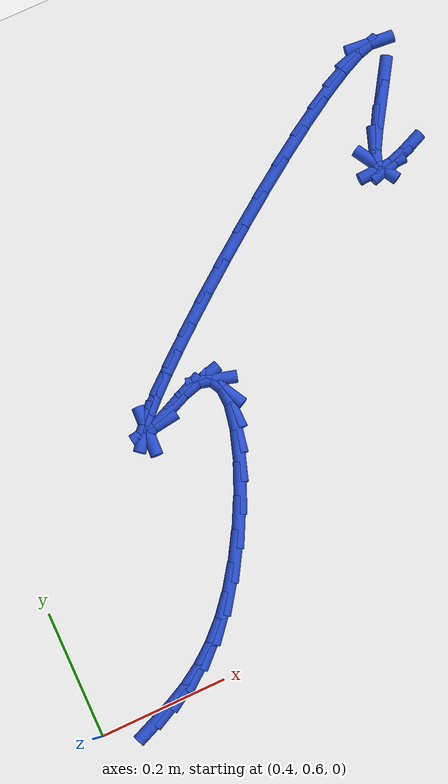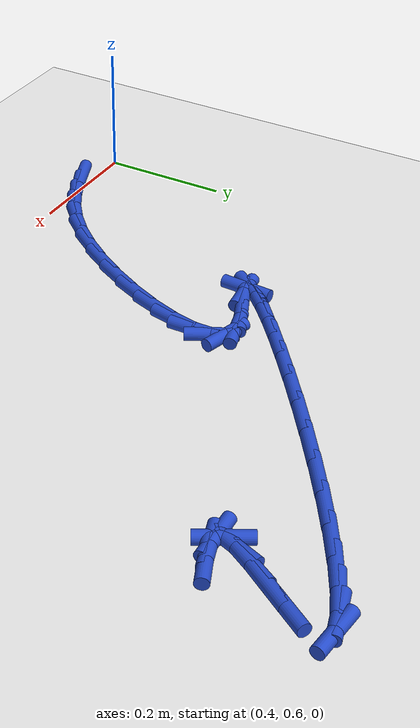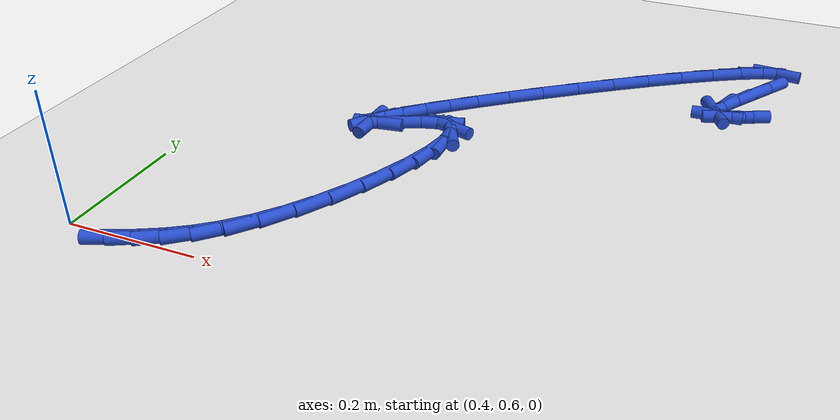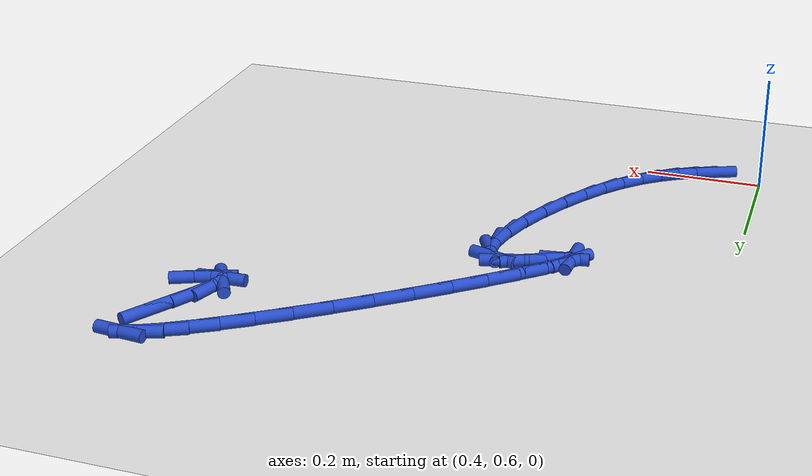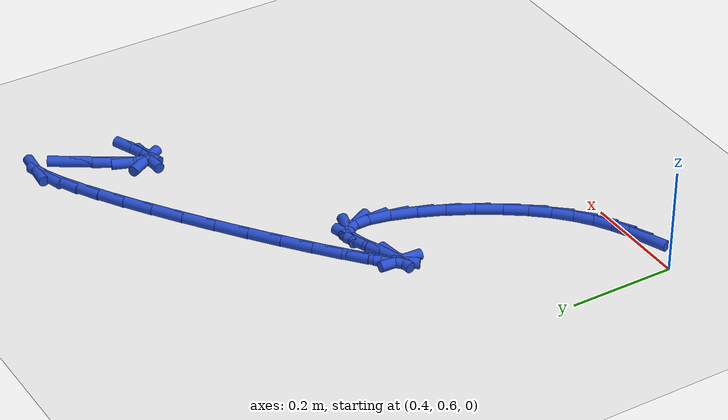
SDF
<sdf version="1.6">
 <world name="default">
  <model name="ground_plane">
   <static>1</static>
   <link name="link">
    <collision name="collision">
     <geometry><plane><normal>0 0 1</normal><size>100 100</size></plane></geometry>
     <surface><friction><ode><mu>100</mu><mu2>50</mu2></ode></friction></surface>
    </collision>
    <visual name="visual">
     <cast_shadows>0</cast_shadows>
     <geometry><plane><normal>0 0 1</normal><size>100 100</size></plane></geometry>
     <material>
      <script><uri>file://media/materials/scripts/gazebo.material</uri><name>Gazebo/WhiteGlow</name></script>
     </material>
    </visual>
   </link>
  </model>
  <model name="line">
   <link name="link_24">
    <pose>0.4833484668485068 0.586368787556622 0.01 0 1.57 0.38820993739455334</pose>
    <collision name="collision">
     <geometry><cylinder><radius>0.01</radius><length>0.08</length></cylinder></geometry>
    </collision>
    <visual name="visual">
     <material>
      <script><name>Gazebo/Blue</name><uri>file://media/materials/scripts/gazebo.material</uri></script>
     </material>
     <geometry><cylinder><radius>0.01</radius><length>0.08</length></cylinder></geometry>
    </visual>
   </link>
   <link name="link_25">
    <pose>0.5137501321736483 0.5988019720535729 0.01 0 1.57 0.46328042237995387</pose>
    <collision name="collision">
     <geometry><cylinder><radius>0.01</radius><length>0.08</length></cylinder></geometry>
    </collision>
    <visual name="visual">
     <material>
      <script><name>Gazebo/Blue</name><uri>file://media/materials/scripts/gazebo.material</uri></script>
     </material>
     <geometry><cylinder><radius>0.01</radius><length>0.08</length></cylinder></geometry>
    </visual>
   </link>
   <link name="link_26">
    <pose>0.5439509091998385 0.6138885014589054 0.01 0 1.57 0.5567034667190686</pose>
    <collision name="collision">
     <geometry><cylinder><radius>0.01</radius><length>0.08</length></cylinder></geometry>
    </collision>
    <visual name="visual">
     <material>
      <script><name>Gazebo/Blue</name><uri>file://media/materials/scripts/gazebo.material</uri></script>
     </material>
     <geometry><cylinder><radius>0.01</radius><length>0.08</length></cylinder></geometry>
    </visual>
   </link>
   <link name="link_27">
    <pose>0.573946174326545 0.6325565557082264 0.01 0 1.57 0.6612846778918714</pose>
    <collision name="collision">
     <geometry><cylinder><radius>0.01</radius><length>0.08</length></cylinder></geometry>
    </collision>
    <visual name="visual">
     <material>
      <script><name>Gazebo/Blue</name><uri>file://media/materials/scripts/gazebo.material</uri></script>
     </material>
     <geometry><cylinder><radius>0.01</radius><length>0.08</length></cylinder></geometry>
    </visual>
   </link>
   <link name="link_28">
    <pose>0.6037313039532363 0.6557343147371439 0.01 0 1.57 0.768991452472936</pose>
    <collision name="collision">
     <geometry><cylinder><radius>0.01</radius><length>0.08</length></cylinder></geometry>
    </collision>
    <visual name="visual">
     <material>
      <script><name>Gazebo/Blue</name><uri>file://media/materials/scripts/gazebo.material</uri></script>
     </material>
     <geometry><cylinder><radius>0.01</radius><length>0.08</length></cylinder></geometry>
    </visual>
   </link>
   <link name="link_29">
    <pose>0.6333016744793794 0.6843499584812642 0.01 0 1.57 0.8724670537489958</pose>
    <collision name="collision">
     <geometry><cylinder><radius>0.01</radius><length>0.08</length></cylinder></geometry>
    </collision>
    <visual name="visual">
     <material>
      <script><name>Gazebo/Blue</name><uri>file://media/materials/scripts/gazebo.material</uri></script>
     </material>
     <geometry><cylinder><radius>0.01</radius><length>0.08</length></cylinder></geometry>
    </visual>
   </link>
   <link name="link_30">
    <pose>0.6626418207621968 0.7193021566672196 0.01 0 1.57 0.9601165431308157</pose>
    <collision name="collision">
     <geometry><cylinder><radius>0.01</radius><length>0.08</length></cylinder></geometry>
    </collision>
    <visual name="visual">
     <material>
      <script><name>Gazebo/Blue</name><uri>file://media/materials/scripts/gazebo.material</uri></script>
     </material>
     <geometry><cylinder><radius>0.01</radius><length>0.08</length></cylinder></geometry>
    </visual>
   </link>
   <link name="link_31">
    <pose>0.6912569975205123 0.7601849992191632 0.01 0 1.57 1.0309089559622644</pose>
    <collision name="collision">
     <geometry><cylinder><radius>0.01</radius><length>0.08</length></cylinder></geometry>
    </collision>
    <visual name="visual">
     <material>
      <script><name>Gazebo/Blue</name><uri>file://media/materials/scripts/gazebo.material</uri></script>
     </material>
     <geometry><cylinder><radius>0.01</radius><length>0.08</length></cylinder></geometry>
    </visual>
   </link>
   <link name="link_32">
    <pose>0.7179941788518448 0.8048007646880739 0.01 0 1.57 1.0959491649789292</pose>
    <collision name="collision">
     <geometry><cylinder><radius>0.01</radius><length>0.08</length></cylinder></geometry>
    </collision>
    <visual name="visual">
     <material>
      <script><name>Gazebo/Blue</name><uri>file://media/materials/scripts/gazebo.material</uri></script>
     </material>
     <geometry><cylinder><radius>0.01</radius><length>0.08</length></cylinder></geometry>
    </visual>
   </link>
   <link name="link_33">
    <pose>0.7416525631832369 0.8508216883167274 0.01 0 1.57 1.164950753278454</pose>
    <collision name="collision">
     <geometry><cylinder><radius>0.01</radius><length>0.08</length></cylinder></geometry>
    </collision>
    <visual name="visual">
     <material>
      <script><name>Gazebo/Blue</name><uri>file://media/materials/scripts/gazebo.material</uri></script>
     </material>
     <geometry><cylinder><radius>0.01</radius><length>0.08</length></cylinder></geometry>
    </visual>
   </link>
   <link name="link_34">
    <pose>0.7610313489417315 0.8959200053478993 0.01 0 1.57 1.2501414862681839</pose>
    <collision name="collision">
     <geometry><cylinder><radius>0.01</radius><length>0.08</length></cylinder></geometry>
    </collision>
    <visual name="visual">
     <material>
      <script><name>Gazebo/Blue</name><uri>file://media/materials/scripts/gazebo.material</uri></script>
     </material>
     <geometry><cylinder><radius>0.01</radius><length>0.08</length></cylinder></geometry>
    </visual>
   </link>
   <link name="link_35">
    <pose>0.7749297345543708 0.9377679510243652 0.01 0 1.57 1.3743759682598755</pose>
    <collision name="collision">
     <geometry><cylinder><radius>0.01</radius><length>0.08</length></cylinder></geometry>
    </collision>
    <visual name="visual">
     <material>
      <script><name>Gazebo/Blue</name><uri>file://media/materials/scripts/gazebo.material</uri></script>
     </material>
     <geometry><cylinder><radius>0.01</radius><length>0.08</length></cylinder></geometry>
    </visual>
   </link>
   <link name="link_36">
    <pose>0.7821469184481973 0.9740377605889001 0.01 0 1.57 -1.5473616973023543</pose>
    <collision name="collision">
     <geometry><cylinder><radius>0.01</radius><length>0.08</length></cylinder></geometry>
    </collision>
    <visual name="visual">
     <material>
      <script><name>Gazebo/Blue</name><uri>file://media/materials/scripts/gazebo.material</uri></script>
     </material>
     <geometry><cylinder><radius>0.01</radius><length>0.08</length></cylinder></geometry>
    </visual>
   </link>
   <link name="link_37">
    <pose>0.7814820990502537 1.0024016692842805 0.01 0 1.57 -1.0774886177360425</pose>
    <collision name="collision">
     <geometry><cylinder><radius>0.01</radius><length>0.08</length></cylinder></geometry>
    </collision>
    <visual name="visual">
     <material>
      <script><name>Gazebo/Blue</name><uri>file://media/materials/scripts/gazebo.material</uri></script>
     </material>
     <geometry><cylinder><radius>0.01</radius><length>0.08</length></cylinder></geometry>
    </visual>
   </link>
   <link name="link_38">
    <pose>0.7717344747875824 1.0205319123532814 0.01 0 1.57 -0.27115919203307887</pose>
    <collision name="collision">
     <geometry><cylinder><radius>0.01</radius><length>0.08</length></cylinder></geometry>
    </collision>
    <visual name="visual">
     <material>
      <script><name>Gazebo/Blue</name><uri>file://media/materials/scripts/gazebo.material</uri></script>
     </material>
     <geometry><cylinder><radius>0.01</radius><length>0.08</length></cylinder></geometry>
    </visual>
   </link>
   <link name="link_39">
    <pose>0.751703244087226 1.0261007250386787 0.01 0 1.57 0.2668726521005115</pose>
    <collision name="collision">
     <geometry><cylinder><radius>0.01</radius><length>0.08</length></cylinder></geometry>
    </collision>
    <visual name="visual">
     <material>
      <script><name>Gazebo/Blue</name><uri>file://media/materials/scripts/gazebo.material</uri></script>
     </material>
     <geometry><cylinder><radius>0.01</radius><length>0.08</length></cylinder></geometry>
    </visual>
   </link>
   <link name="link_40">
    <pose>0.7210690042762703 1.0177255031096377 0.01 0 1.57 0.42623050665465434</pose>
    <collision name="collision">
     <geometry><cylinder><radius>0.01</radius><length>0.08</length></cylinder></geometry>
    </collision>
    <visual name="visual">
     <material>
      <script><name>Gazebo/Blue</name><uri>file://media/materials/scripts/gazebo.material</uri></script>
     </material>
     <geometry><cylinder><radius>0.01</radius><length>0.08</length></cylinder></geometry>
    </visual>
   </link>
   <link name="link_41">
    <pose>0.6873282552412455 1.00240495819235 0.01 0 1.57 0.41125407069250974</pose>
    <collision name="collision">
     <geometry><cylinder><radius>0.01</radius><length>0.08</length></cylinder></geometry>
    </collision>
    <visual name="visual">
     <material>
      <script><name>Gazebo/Blue</name><uri>file://media/materials/scripts/gazebo.material</uri></script>
     </material>
     <geometry><cylinder><radius>0.01</radius><length>0.08</length></cylinder></geometry>
    </visual>
   </link>
   <link name="link_42">
    <pose>0.6618113247367805 0.9912764382031447 0.01 0 1.57 0.13711017147858523</pose>
    <collision name="collision">
     <geometry><cylinder><radius>0.01</radius><length>0.08</length></cylinder></geometry>
    </collision>
    <visual name="visual">
     <material>
      <script><name>Gazebo/Blue</name><uri>file://media/materials/scripts/gazebo.material</uri></script>
     </material>
     <geometry><cylinder><radius>0.01</radius><length>0.08</length></cylinder></geometry>
    </visual>
   </link>
   <link name="link_43">
    <pose>0.6497593873678029 0.9896135616719111 0.01 0 1.57 1.5209693389558194</pose>
    <collision name="collision">
     <geometry><cylinder><radius>0.01</radius><length>0.08</length></cylinder></geometry>
    </collision>
    <visual name="visual">
     <material>
      <script><name>Gazebo/Blue</name><uri>file://media/materials/scripts/gazebo.material</uri></script>
     </material>
     <geometry><cylinder><radius>0.01</radius><length>0.08</length></cylinder></geometry>
    </visual>
   </link>
   <link name="link_44">
    <pose>0.6501084986112181 0.9966142312797265 0.01 0 1.57 0.9074301202180165</pose>
    <collision name="collision">
     <geometry><cylinder><radius>0.01</radius><length>0.08</length></cylinder></geometry>
    </collision>
    <visual name="visual">
     <material>
      <script><name>Gazebo/Blue</name><uri>file://media/materials/scripts/gazebo.material</uri></script>
     </material>
     <geometry><cylinder><radius>0.01</radius><length>0.08</length></cylinder></geometry>
    </visual>
   </link>
   <link name="link_45">
    <pose>0.6615060448847625 1.011198183483963 0.01 0 1.57 0.7852465177851289</pose>
    <collision name="collision">
     <geometry><cylinder><radius>0.01</radius><length>0.08</length></cylinder></geometry>
    </collision>
    <visual name="visual">
     <material>
      <script><name>Gazebo/Blue</name><uri>file://media/materials/scripts/gazebo.material</uri></script>
     </material>
     <geometry><cylinder><radius>0.01</radius><length>0.08</length></cylinder></geometry>
    </visual>
   </link>
   <link name="link_46">
    <pose>0.6825994126061736 1.0322851547419927 0.01 0 1.57 0.7331304904036086</pose>
    <collision name="collision">
     <geometry><cylinder><radius>0.01</radius><length>0.08</length></cylinder></geometry>
    </collision>
    <visual name="visual">
     <material>
      <script><name>Gazebo/Blue</name><uri>file://media/materials/scripts/gazebo.material</uri></script>
     </material>
     <geometry><cylinder><radius>0.01</radius><length>0.08</length></cylinder></geometry>
    </visual>
   </link>
   <link name="link_47">
    <pose>0.712035988193188 1.0587948815111885 0.01 0 1.57 0.7027243470355717</pose>
    <collision name="collision">
     <geometry><cylinder><radius>0.01</radius><length>0.08</length></cylinder></geometry>
    </collision>
    <visual name="visual">
     <material>
      <script><name>Gazebo/Blue</name><uri>file://media/materials/scripts/gazebo.material</uri></script>
     </material>
     <geometry><cylinder><radius>0.01</radius><length>0.08</length></cylinder></geometry>
    </visual>
   </link>
   <link name="link_48">
    <pose>0.7484631580635427 1.0896471002489216 0.01 0 1.57 0.6814067698014981</pose>
    <collision name="collision">
     <geometry><cylinder><radius>0.01</radius><length>0.08</length></cylinder></geometry>
    </collision>
    <visual name="visual">
     <material>
      <script><name>Gazebo/Blue</name><uri>file://media/materials/scripts/gazebo.material</uri></script>
     </material>
     <geometry><cylinder><radius>0.01</radius><length>0.08</length></cylinder></geometry>
    </visual>
   </link>
   <link name="link_49">
    <pose>0.7905283086349744 1.123761547412565 0.01 0 1.57 0.6643417074533273</pose>
    <collision name="collision">
     <geometry><cylinder><radius>0.01</radius><length>0.08</length></cylinder></geometry>
    </collision>
    <visual name="visual">
     <material>
      <script><name>Gazebo/Blue</name><uri>file://media/materials/scripts/gazebo.material</uri></script>
     </material>
     <geometry><cylinder><radius>0.01</radius><length>0.08</length></cylinder></geometry>
    </visual>
   </link>
   <link name="link_50">
    <pose>0.8368788263252207 1.160057959459492 0.01 0 1.57 0.6491346908591793</pose>
    <collision name="collision">
     <geometry><cylinder><radius>0.01</radius><length>0.08</length></cylinder></geometry>
    </collision>
    <visual name="visual">
     <material>
      <script><name>Gazebo/Blue</name><uri>file://media/materials/scripts/gazebo.material</uri></script>
     </material>
     <geometry><cylinder><radius>0.01</radius><length>0.08</length></cylinder></geometry>
    </visual>
   </link>
   <link name="link_51">
    <pose>0.8861620975520185 1.1974560728470736 0.01 0 1.57 0.6342776916524369</pose>
    <collision name="collision">
     <geometry><cylinder><radius>0.01</radius><length>0.08</length></cylinder></geometry>
    </collision>
    <visual name="visual">
     <material>
      <script><name>Gazebo/Blue</name><uri>file://media/materials/scripts/gazebo.material</uri></script>
     </material>
     <geometry><cylinder><radius>0.01</radius><length>0.08</length></cylinder></geometry>
    </visual>
   </link>
   <link name="link_52">
    <pose>0.9370255087331034 1.2348756240326815 0.01 0 1.57 0.618526201779364</pose>
    <collision name="collision">
     <geometry><cylinder><radius>0.01</radius><length>0.08</length></cylinder></geometry>
    </collision>
    <visual name="visual">
     <material>
      <script><name>Gazebo/Blue</name><uri>file://media/materials/scripts/gazebo.material</uri></script>
     </material>
     <geometry><cylinder><radius>0.01</radius><length>0.08</length></cylinder></geometry>
    </visual>
   </link>
   <link name="link_53">
    <pose>0.9881164462862136 1.2712363494736898 0.01 0 1.57 0.6005200291970447</pose>
    <collision name="collision">
     <geometry><cylinder><radius>0.01</radius><length>0.08</length></cylinder></geometry>
    </collision>
    <visual name="visual">
     <material>
      <script><name>Gazebo/Blue</name><uri>file://media/materials/scripts/gazebo.material</uri></script>
     </material>
     <geometry><cylinder><radius>0.01</radius><length>0.08</length></cylinder></geometry>
    </visual>
   </link>
   <link name="link_54">
    <pose>1.0380822966290864 1.30545798562747 0.01 0 1.57 0.5783708839260531</pose>
    <collision name="collision">
     <geometry><cylinder><radius>0.01</radius><length>0.08</length></cylinder></geometry>
    </collision>
    <visual name="visual">
     <material>
      <script><name>Gazebo/Blue</name><uri>file://media/materials/scripts/gazebo.material</uri></script>
     </material>
     <geometry><cylinder><radius>0.01</radius><length>0.08</length></cylinder></geometry>
    </visual>
   </link>
   <link name="link_55">
    <pose>1.085570446179458 1.3364602689513942 0.01 0 1.57 0.5489308673238429</pose>
    <collision name="collision">
     <geometry><cylinder><radius>0.01</radius><length>0.08</length></cylinder></geometry>
    </collision>
    <visual name="visual">
     <material>
      <script><name>Gazebo/Blue</name><uri>file://media/materials/scripts/gazebo.material</uri></script>
     </material>
     <geometry><cylinder><radius>0.01</radius><length>0.08</length></cylinder></geometry>
    </visual>
   </link>
   <link name="link_56">
    <pose>1.1292282813550647 1.363162935902835 0.01 0 1.57 0.5060619291375661</pose>
    <collision name="collision">
     <geometry><cylinder><radius>0.01</radius><length>0.08</length></cylinder></geometry>
    </collision>
    <visual name="visual">
     <material>
      <script><name>Gazebo/Blue</name><uri>file://media/materials/scripts/gazebo.material</uri></script>
     </material>
     <geometry><cylinder><radius>0.01</radius><length>0.08</length></cylinder></geometry>
    </visual>
   </link>
   <link name="link_57">
    <pose>1.1677031885736444 1.3844857229391643 0.01 0 1.57 0.4355366535366532</pose>
    <collision name="collision">
     <geometry><cylinder><radius>0.01</radius><length>0.08</length></cylinder></geometry>
    </collision>
    <visual name="visual">
     <material>
      <script><name>Gazebo/Blue</name><uri>file://media/materials/scripts/gazebo.material</uri></script>
     </material>
     <geometry><cylinder><radius>0.01</radius><length>0.08</length></cylinder></geometry>
    </visual>
   </link>
   <link name="link_58">
    <pose>1.1996425542529345 1.3993483665177553 0.01 0 1.57 0.2955284686117981</pose>
    <collision name="collision">
     <geometry><cylinder><radius>0.01</radius><length>0.08</length></cylinder></geometry>
    </collision>
    <visual name="visual">
     <material>
      <script><name>Gazebo/Blue</name><uri>file://media/materials/scripts/gazebo.material</uri></script>
     </material>
     <geometry><cylinder><radius>0.01</radius><length>0.08</length></cylinder></geometry>
    </visual>
   </link>
   <link name="link_59">
    <pose>1.2236937648106707 1.4066706030959792 0.01 0 1.57 -0.08744658813504777</pose>
    <collision name="collision">
     <geometry><cylinder><radius>0.01</radius><length>0.08</length></cylinder></geometry>
    </collision>
    <visual name="visual">
     <material>
      <script><name>Gazebo/Blue</name><uri>file://media/materials/scripts/gazebo.material</uri></script>
     </material>
     <geometry><cylinder><radius>0.01</radius><length>0.08</length></cylinder></geometry>
    </visual>
   </link>
   <link name="link_63">
    <pose>1.217904256672606 1.342454986383887 0.01 0 1.57 1.0005902580879384</pose>
    <collision name="collision">
     <geometry><cylinder><radius>0.01</radius><length>0.08</length></cylinder></geometry>
    </collision>
    <visual name="visual">
     <material>
      <script><name>Gazebo/Blue</name><uri>file://media/materials/scripts/gazebo.material</uri></script>
     </material>
     <geometry><cylinder><radius>0.01</radius><length>0.08</length></cylinder></geometry>
    </visual>
   </link>
   <link name="link_64">
    <pose>1.1957447245242527 1.3078987133613305 0.01 0 1.57 0.9979757512699563</pose>
    <collision name="collision">
     <geometry><cylinder><radius>0.01</radius><length>0.08</length></cylinder></geometry>
    </collision>
    <visual name="visual">
     <material>
      <script><name>Gazebo/Blue</name><uri>file://media/materials/scripts/gazebo.material</uri></script>
     </material>
     <geometry><cylinder><radius>0.01</radius><length>0.08</length></cylinder></geometry>
    </visual>
   </link>
   <link name="link_65">
    <pose>1.1736122956282742 1.2735824840624563 0.01 0 1.57 1.0444058567385293</pose>
    <collision name="collision">
     <geometry><cylinder><radius>0.01</radius><length>0.08</length></cylinder></geometry>
    </collision>
    <visual name="visual">
     <material>
      <script><name>Gazebo/Blue</name><uri>file://media/materials/scripts/gazebo.material</uri></script>
     </material>
     <geometry><cylinder><radius>0.01</radius><length>0.08</length></cylinder></geometry>
    </visual>
   </link>
   <link name="link_66">
    <pose>1.156425645010413 1.244005328449651 0.01 0 1.57 1.2244358652103724</pose>
    <collision name="collision">
     <geometry><cylinder><radius>0.01</radius><length>0.08</length></cylinder></geometry>
    </collision>
    <visual name="visual">
     <material>
      <script><name>Gazebo/Blue</name><uri>file://media/materials/scripts/gazebo.material</uri></script>
     </material>
     <geometry><cylinder><radius>0.01</radius><length>0.08</length></cylinder></geometry>
    </visual>
   </link>
   <link name="link_67">
    <pose>1.1490749589816625 1.2236382089960258 0.01 0 1.57 -1.0542798196957843</pose>
    <collision name="collision">
     <geometry><cylinder><radius>0.01</radius><length>0.08</length></cylinder></geometry>
    </collision>
    <visual name="visual">
     <material>
      <script><name>Gazebo/Blue</name><uri>file://media/materials/scripts/gazebo.material</uri></script>
     </material>
     <geometry><cylinder><radius>0.01</radius><length>0.08</length></cylinder></geometry>
    </visual>
   </link>
   <link name="link_68">
    <pose>1.1541560974288634 1.2146916849635583 0.01 0 1.57 0.04956153941908849</pose>
    <collision name="collision">
     <geometry><cylinder><radius>0.01</radius><length>0.08</length></cylinder></geometry>
    </collision>
    <visual name="visual">
     <material>
      <script><name>Gazebo/Blue</name><uri>file://media/materials/scripts/gazebo.material</uri></script>
     </material>
     <geometry><cylinder><radius>0.01</radius><length>0.08</length></cylinder></geometry>
    </visual>
   </link>
   <link name="link_69">
    <pose>1.1703239820658375 1.2154936469549638 0.01 0 1.57 0.32135105077253534</pose>
    <collision name="collision">
     <geometry><cylinder><radius>0.01</radius><length>0.08</length></cylinder></geometry>
    </collision>
    <visual name="visual">
     <material>
      <script><name>Gazebo/Blue</name><uri>file://media/materials/scripts/gazebo.material</uri></script>
     </material>
     <geometry><cylinder><radius>0.01</radius><length>0.08</length></cylinder></geometry>
    </visual>
   </link>
   <link name="link_70">
    <pose>1.1958451994721522 1.223989392243943 0.01 0 1.57 0.4031438198893011</pose>
    <collision name="collision">
     <geometry><cylinder><radius>0.01</radius><length>0.08</length></cylinder></geometry>
    </collision>
    <visual name="visual">
     <material>
      <script><name>Gazebo/Blue</name><uri>file://media/materials/scripts/gazebo.material</uri></script>
     </material>
     <geometry><cylinder><radius>0.01</radius><length>0.08</length></cylinder></geometry>
    </visual>
   </link>
  </model>
 </world>
</sdf>
